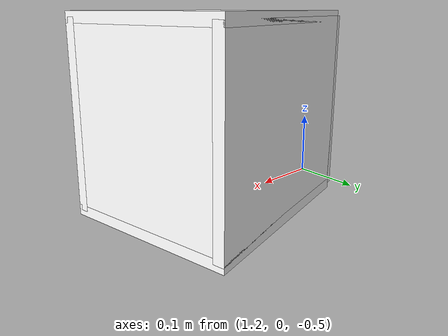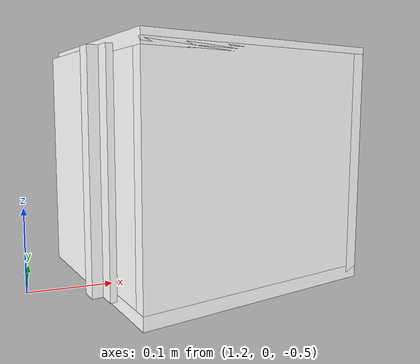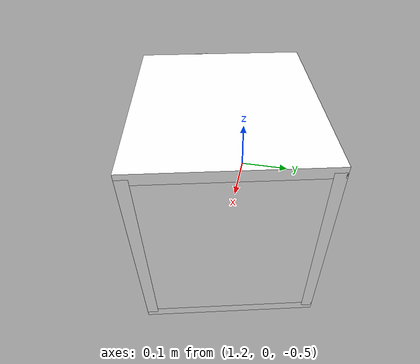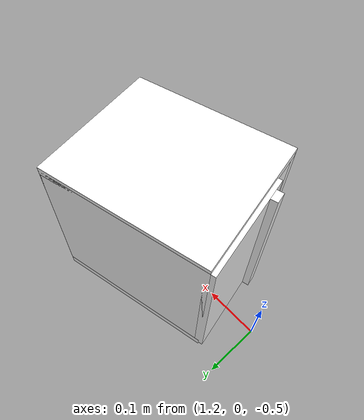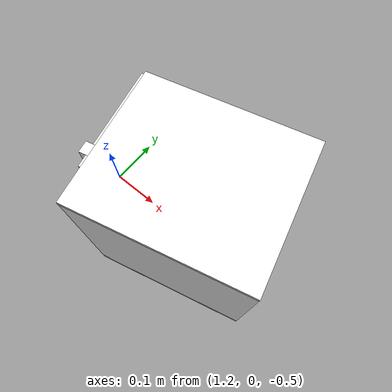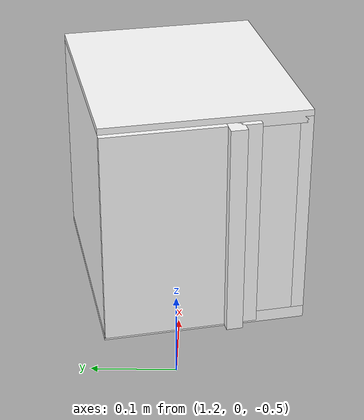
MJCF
<mujoco model="cabinet">
    <compiler angle="radian" eulerseq='zxy' />
    <option gravity = "0 0 0" />
    <option>
        <flag contact = "disable"/>
    </option>
    <statistic	extent="1.0" center="0.0 0.0 0.0"/>
    <visual>
        <map fogstart="3" fogend="5" force="0.1" znear=" 0.100000 " zfar=" 12.000000 "/>
    </visual>
    <size njmax="500" nconmax="100" />
    <actuator>
        <velocity joint="bottom_left_hinge" name="viva_revolution" kv='10'></velocity>
    </actuator>
    <asset>
        <texture builtin="flat" name="tabletex" height="32" width="32" rgb1="1 1 1" type="cube"></texture>
        <texture builtin="flat" name="objtex" height="32" width="32" rgb1="1 1 1" type="cube"></texture>
        <texture builtin="flat" name="handletex" height="32" width="32" rgb1="1 1 1" type="cube"></texture>
        <texture builtin="flat" name="wallpaper" height="32" width="32" rgb1="1 0 0" type="cube"></texture>
        <texture builtin="flat" name="kp" height="32" width="32" rgb1="1 1 1" type="cube"></texture>
        <material name="geomTable" shininess="0.03" specular="0.75" texture="tabletex"></material>
        <material name="geomObj" shininess="0.03" specular="0.75" texture="objtex"></material>
        <material name="geomHandle" shininess="0.03" specular="0.75" texture="handletex"></material>
        <material name="ax" shininess="0.03" specular="0.75" texture="wallpaper"></material>
        <material name="bg" shininess="0.03" specular="0.75" texture="wallpaper"></material>
        <material name="geomKeypad" shininess="0.03" specular="0.75" texture="kp"></material>
    </asset>
    <worldbody>
        <body name="cabinet_bottom" pos= " 1.419206 0.001883 -0.486286 "  quat= " -0.117574 0.000000 0.000000 0.993064" >
            <inertial pos="0 0 0" mass="1" diaginertia="1 1 1" />
            <geom size= " 0.146245 0.123431 0.007743 "  type="box" material="geomObj" name="b"/>
            <body name="cabinet_left" pos= " 0.000000 -0.115688 0.132408 " >
                <inertial pos="0 0 0" mass="1" diaginertia="1 1 1" />
                <geom size= " 0.146245 0.007743 0.132408 "  type="box" material="geomObj" name="c" />
            </body>
            <body name="cabinet_right" pos= " 0.000000 0.115688 0.132408 " >
                <inertial pos="0 0 0" mass="1" diaginertia="1 1 1" />
                <geom size= " 0.146245 0.007743 0.132408 "  type="box" material="geomObj" name="d" />
            </body>
            <body name="cabinet_top" pos= " 0.000000 0.000000 0.264817 " >
                <inertial pos="0 0 0" mass="1" diaginertia="1 1 1" />
                <geom size= " 0.146245 0.123431 0.007743 "  type="box" material="geomObj" name="e"/>
            </body>
            <body name="cabinet_back" pos= " -0.138501 0.000000 0.132408 "  >
                <inertial pos="0 0 0" mass="1" diaginertia="1 1 1" />
                <geom size= " 0.007743 0.123431 0.132408 "  type="box" material="geomObj" name="f" />
            </body>
            <body name="cabinet_keypad" pos= " 0.007743 0.091573 0.132408 " >
                <inertial pos="0 0 0" mass="1" diaginertia="1 1 1" />
                <geom size= " 0.138501 0.030858 0.124665 "  type="box" material="geomKeypad" name="keypizzlemynizzle" />
            </body>
            <body name="cabinet_left_hinge" pos= " 0.146245 -0.123431 0.132408 " >
                <inertial pos= " 0.000000 0.092573 0.000000 "  mass="1" diaginertia="1 1 1" />
                <joint name="bottom_left_hinge" type="hinge" pos="0 0 0" axis="0 0 1" limited="true" range= "-2.3 0"  />
                <geom size= " 0.007743 0.092573 0.132408 "  pos= " 0.000000 0.092573 0.000000 "  type="box" material="geomObj" name="g"/>
                <body name="handle_link" pos= " 0.010000 0.155147 0.000000 " >
                    <inertial pos="0 0 0" mass="1" diaginertia="1 1 1" />
                    <geom size= " 0.010000 0.010000 0.132408 "  type="box" material="geomHandle" name="h"/>
                </body>
            </body>
        </body>
        <body name="external_camera_body_0" pos="0.0 0 0.00" >
            <camera euler="-1.57 1.57 0.0" fovy=" 54.280851 " name="external_camera_0" pos="0.0 0 0"></camera>
            <inertial pos= " 0.00 0.0 0.000000 " mass="1" diaginertia="1 1 1" />
            <joint name="cam_j" pos="0.0 0 0" axis = "1 0 0" type="free" />
        </body>
    </worldbody>
</mujoco>
